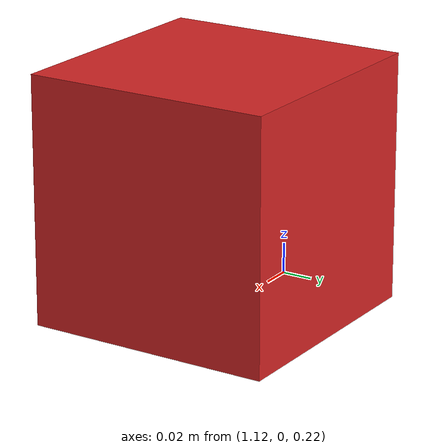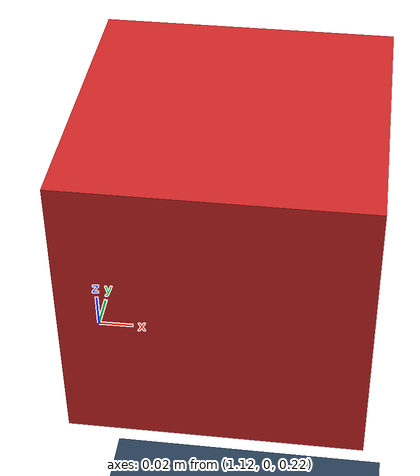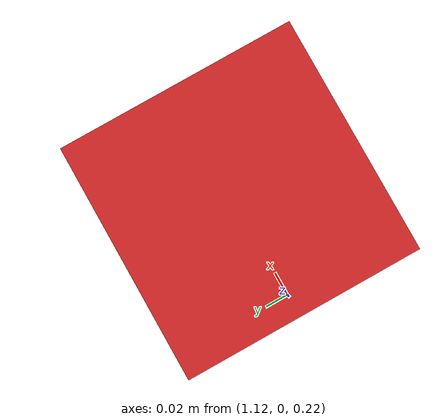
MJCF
<?xml version="1.0" encoding="utf-8"?>
<mujoco model="flat_scene">
  <visual>
    <headlight diffuse="0.6 0.6 0.6" ambient="0.35 0.35 0.35" specular="0 0 0"/>
    <global azimuth="-120" elevation="-25"/>
  </visual>

  <asset>
    <texture type="skybox" builtin="gradient" rgb1="0.35 0.5 0.7" rgb2="0 0 0" width="512" height="3072"/>
    <texture type="2d" name="scene_groundplane" builtin="checker" mark="edge" rgb1="0.2 0.3 0.4" rgb2="0.1 0.2 0.3" markrgb="0.8 0.8 0.8" width="300" height="300"/>
    <material name="scene_groundplane" texture="scene_groundplane" texuniform="true" texrepeat="5 5" reflectance="0.2"/>
  </asset>

  <worldbody>
    <!-- castshadow=false: 平行光在大平面上投阴影会使阴影贴图渲染慢 ~70 倍(实测 2325 vs 32 FPS),
         传感器相机渲染被拖垮导致仿真超载; 关掉后画面略有差异但性能正常 -->
    <light pos="0 0 3.5" dir="0 0 -1" directional="true" castshadow="false"/>
    <geom name="floor" type="plane" size="20 20 0.05" material="scene_groundplane"/>

    <body name="red box" pos="1.2 0 0.3">
      <freejoint/>
      <geom name="red box_geom" type="box" size="0.08 0.08 0.08" rgba="0.85 0.15 0.15 1"/>
    </body>

  </worldbody>
</mujoco>
